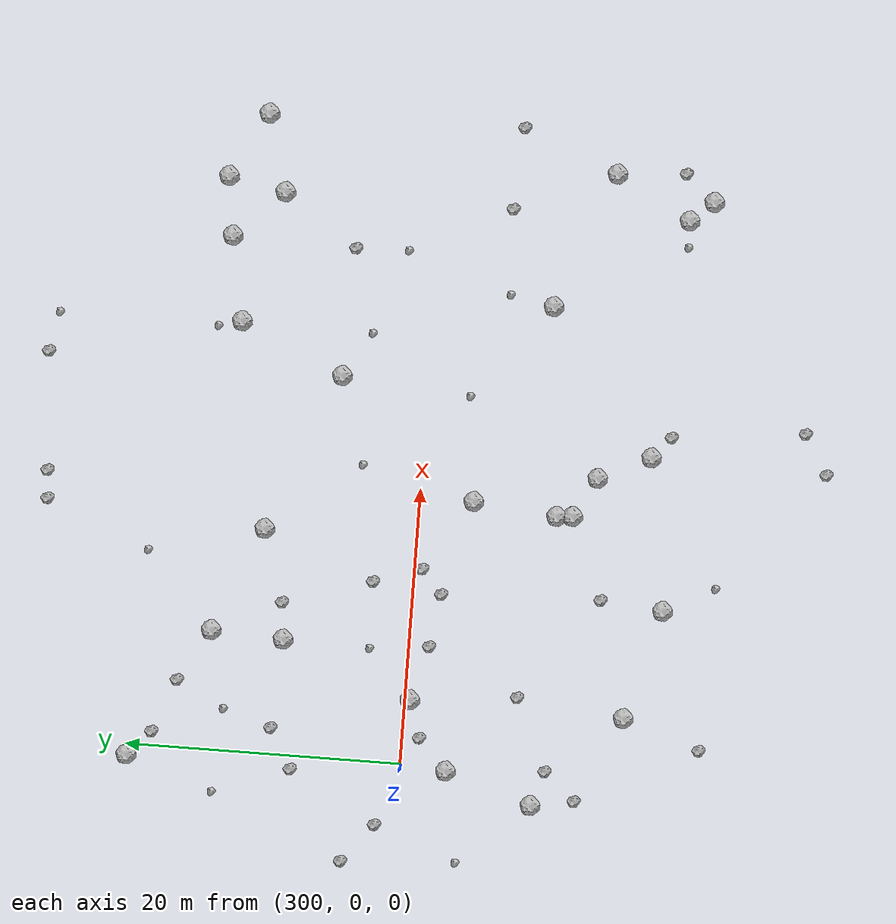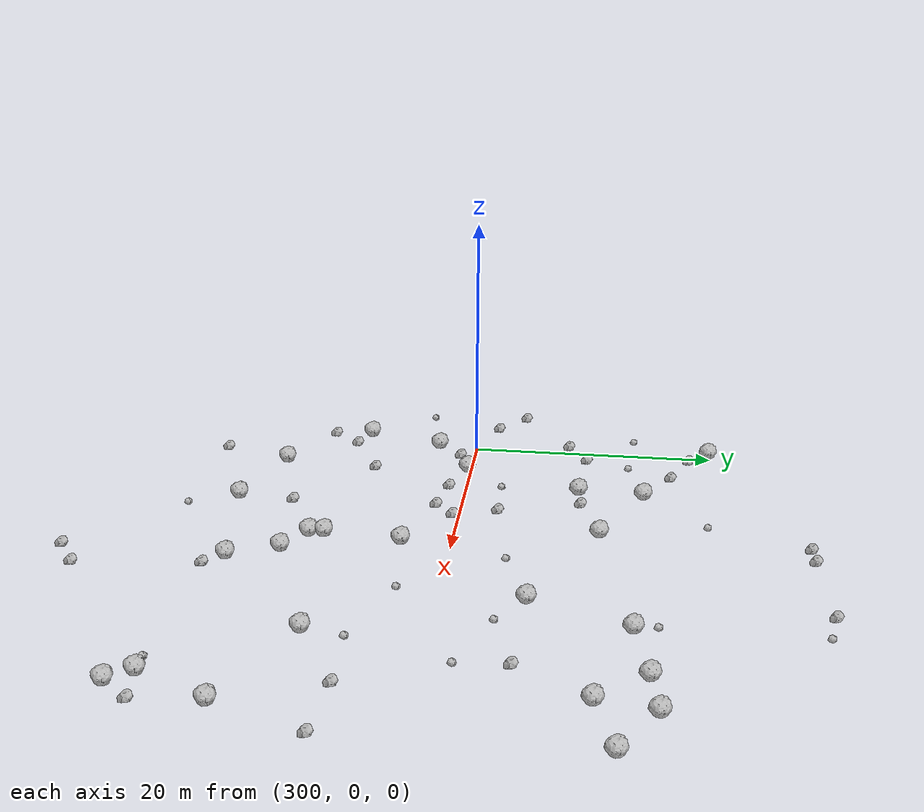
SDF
<sdf version="1.6">
 <world name="default">
  <include><uri>model://sun</uri></include>
  <model name="rock1_8_3">
   <include><uri>model://rock1</uri><pose>319.39903825789446 -3.8741807100624186 0.5 0 0 0</pose></include>
  </model>
  <model name="rock1_8_4">
   <include><uri>model://rock1</uri><pose>304.73874785337375 -0.3184072869260248 0.5 0 0 0</pose></include>
  </model>
  <model name="rock1_8_5">
   <include><uri>model://rock1</uri><pose>341.6758051017376 15.54872602066306 0.5 0 0 0</pose></include>
  </model>
  <model name="rock1_8_6">
   <include><uri>model://rock1</uri><pose>346.4114073162061 12.968579852684535 0.5 0 0 0</pose></include>
  </model>
  <model name="rock1_8_7">
   <include><uri>model://rock1</uri><pose>318.76347309489904 -9.935138192458421 0.5 0 0 0</pose></include>
  </model>
  <model name="rock1_8_8">
   <include><uri>model://rock1</uri><pose>299.7959055055412 -3.2705930146910305 0.5 0 0 0</pose></include>
  </model>
  <model name="rock1_8_9">
   <include><uri>model://rock1</uri><pose>308.7314607689295 14.389573344888284 0.5 0 0 0</pose></include>
  </model>
  <model name="rock1_8_10">
   <include><uri>model://rock1</uri><pose>340.80134738127845 11.390127027396119 0.5 0 0 0</pose></include>
  </model>
  <model name="rock1_8_11">
   <include><uri>model://rock1</uri><pose>331.2216493881798 13.823221610774077 0.5 0 0 0</pose></include>
  </model>
  <model name="rock1_8_12">
   <include><uri>model://rock1</uri><pose>321.72744533106754 -12.699483604586192 0.5 0 0 0</pose></include>
  </model>
  <model name="rock1_8_13">
   <include><uri>model://rock1</uri><pose>327.7957436558909 6.290745772112771 0.5 0 0 0</pose></include>
  </model>
  <model name="rock1_8_14">
   <include><uri>model://rock1</uri><pose>316.3286198671901 11.072659885856567 0.5 0 0 0</pose></include>
  </model>
  <model name="rock1_8_15">
   <include><uri>model://rock1</uri><pose>333.9250420460973 -8.627500936467648 0.5 0 0 0</pose></include>
  </model>
  <model name="rock1_8_16">
   <include><uri>model://rock1</uri><pose>337.37103628912865 14.95687827236555 0.5 0 0 0</pose></include>
  </model>
  <model name="rock1_8_17">
   <include><uri>model://rock1</uri><pose>323.5010728283591 -16.48045304789473 0.5 0 0 0</pose></include>
  </model>
  <model name="rock1_8_18">
   <include><uri>model://rock1</uri><pose>304.5265251078392 -15.817236235192025 0.5 0 0 0</pose></include>
  </model>
  <model name="rock1_8_19">
   <include><uri>model://rock1</uri><pose>312.4743506583595 -18.092065574632272 0.5 0 0 0</pose></include>
  </model>
  <model name="rock1_8_20">
   <include><uri>model://rock1</uri><pose>318.8422806668676 -11.097587719542055 0.5 0 0 0</pose></include>
  </model>
  <model name="rock1_8_21">
   <include><uri>model://rock1</uri><pose>343.8598241007367 -12.544052947456588 0.5 0 0 0</pose></include>
  </model>
  <model name="rock1_8_22">
   <include><uri>model://rock1</uri><pose>342.32889659416793 -19.686586112662603 0.5 0 0 0</pose></include>
  </model>
  <model name="rock1_8_23">
   <include><uri>model://rock1</uri><pose>299.3174918685036 19.86874604777597 0.5 0 0 0</pose></include>
  </model>
  <model name="rock1_8_24">
   <include><uri>model://rock1</uri><pose>297.7575532993873 -9.561197774863391 0.5 0 0 0</pose></include>
  </model>
  <model name="rock1_8_25">
   <include><uri>model://rock1</uri><pose>340.85842592976786 -18.004361239256845 0.5 0 0 0</pose></include>
  </model>
  <model name="rock1_8_26">
   <include><uri>model://rock1</uri><pose>308.43252927546183 9.157849467494806 0.5 0 0 0</pose></include>
  </model>
  <model name="rock2_8_0">
   <include><uri>model://rock2</uri><pose>313.06060100417864 2.9744683297647256 0.3 0 0 0</pose></include>
  </model>
  <model name="rock2_8_1">
   <include><uri>model://rock2</uri><pose>298.2556315424909 -12.681536319729783 0.3 0 0 0</pose></include>
  </model>
  <model name="rock2_8_2">
   <include><uri>model://rock2</uri><pose>326.02516621497585 -27.512886300241505 0.3 0 0 0</pose></include>
  </model>
  <model name="rock2_8_3">
   <include><uri>model://rock2</uri><pose>328.02915112691636 27.652770133483706 0.3 0 0 0</pose></include>
  </model>
  <model name="rock2_8_4">
   <include><uri>model://rock2</uri><pose>319.39852492714533 27.105471057190577 0.3 0 0 0</pose></include>
  </model>
  <model name="rock2_8_5">
   <include><uri>model://rock2</uri><pose>295.51809133119224 1.5995753775731885 0.3 0 0 0</pose></include>
  </model>
  <model name="rock2_8_6">
   <include><uri>model://rock2</uri><pose>304.9335630525692 16.627644199099883 0.3 0 0 0</pose></include>
  </model>
  <model name="rock2_8_7">
   <include><uri>model://rock2</uri><pose>337.0949927765419 5.992808050156192 0.3 0 0 0</pose></include>
  </model>
  <model name="rock2_8_8">
   <include><uri>model://rock2</uri><pose>346.72864291154076 -5.585880165947643 0.3 0 0 0</pose></include>
  </model>
  <model name="rock2_8_9">
   <include><uri>model://rock2</uri><pose>340.7717124340314 -5.185832543246278 0.3 0 0 0</pose></include>
  </model>
  <model name="rock2_8_10">
   <include><uri>model://rock2</uri><pose>301.07608248782793 18.186832299780107 0.3 0 0 0</pose></include>
  </model>
  <model name="rock2_8_11">
   <include><uri>model://rock2</uri><pose>311.08609171212856 9.436081161908504 0.3 0 0 0</pose></include>
  </model>
  <model name="rock2_8_12">
   <include><uri>model://rock2</uri><pose>302.5683723484153 -21.42971107460007 0.3 0 0 0</pose></include>
  </model>
  <model name="rock2_8_13">
   <include><uri>model://rock2</uri><pose>317.3621610093757 26.964819960705967 0.3 0 0 0</pose></include>
  </model>
  <model name="rock2_8_14">
   <include><uri>model://rock2</uri><pose>312.91636314277673 -13.556209899895698 0.3 0 0 0</pose></include>
  </model>
  <model name="rock2_8_15">
   <include><uri>model://rock2</uri><pose>301.96558907331416 9.610215309809725 0.3 0 0 0</pose></include>
  </model>
  <model name="rock2_8_16">
   <include><uri>model://rock2</uri><pose>344.25153355067226 -17.529425833929984 0.3 0 0 0</pose></include>
  </model>
  <model name="rock2_8_17">
   <include><uri>model://rock2</uri><pose>292.7162991523061 3.8554502234360086 0.3 0 0 0</pose></include>
  </model>
  <model name="rock2_8_18">
   <include><uri>model://rock2</uri><pose>305.44917304508795 -8.0528484985342 0.3 0 0 0</pose></include>
  </model>
  <model name="rock2_8_19">
   <include><uri>model://rock2</uri><pose>325.05884993110067 -17.84460803294609 0.3 0 0 0</pose></include>
  </model>
  <model name="rock2_8_20">
   <include><uri>model://rock2</uri><pose>323.15956229427525 -29.217680442005907 0.3 0 0 0</pose></include>
  </model>
  <model name="rock2_8_21">
   <include><uri>model://rock2</uri><pose>308.6566230510463 -1.4174197349264475 0.3 0 0 0</pose></include>
  </model>
  <model name="rock2_8_22">
   <include><uri>model://rock2</uri><pose>299.0833300140214 7.980979629556572 0.3 0 0 0</pose></include>
  </model>
  <model name="rock2_8_23">
   <include><uri>model://rock2</uri><pose>314.2346748378815 -0.5087838612451634 0.3 0 0 0</pose></include>
  </model>
  <model name="rock2_8_24">
   <include><uri>model://rock2</uri><pose>302.00432174129867 -1.1798387679488052 0.3 0 0 0</pose></include>
  </model>
  <model name="rock2_8_25">
   <include><uri>model://rock2</uri><pose>312.4869161452969 -2.013804913675802 0.3 0 0 0</pose></include>
  </model>
  <model name="rock2_8_26">
   <include><uri>model://rock2</uri><pose>300.2465425149298 -10.43095197527063 0.3 0 0 0</pose></include>
  </model>
  <model name="rock3_8_0">
   <include><uri>model://rock3</uri><pose>338.8813495727497 -18.088278356540265 0.2 0 0 0</pose></include>
  </model>
  <model name="rock3_8_1">
   <include><uri>model://rock3</uri><pose>330.89404156725647 27.048600359750104 0.2 0 0 0</pose></include>
  </model>
  <model name="rock3_8_2">
   <include><uri>model://rock3</uri><pose>314.3170972220571 -21.832944365141472 0.2 0 0 0</pose></include>
  </model>
  <model name="rock3_8_3">
   <include><uri>model://rock3</uri><pose>293.17341005004323 -4.458523273800079 0.2 0 0 0</pose></include>
  </model>
  <model name="rock3_8_4">
   <include><uri>model://rock3</uri><pose>308.19383122994077 2.8553097203595215 0.2 0 0 0</pose></include>
  </model>
  <model name="rock3_8_5">
   <include><uri>model://rock3</uri><pose>330.997288682846 4.299145572399844 0.2 0 0 0</pose></include>
  </model>
  <model name="rock3_8_6">
   <include><uri>model://rock3</uri><pose>314.1581133059589 19.374282874328316 0.2 0 0 0</pose></include>
  </model>
  <model name="rock3_8_7">
   <include><uri>model://rock3</uri><pose>337.18384837138154 2.1257954027010726 0.2 0 0 0</pose></include>
  </model>
  <model name="rock3_8_8">
   <include><uri>model://rock3</uri><pose>303.0598590237871 13.105036027123994 0.2 0 0 0</pose></include>
  </model>
  <model name="rock3_8_9">
   <include><uri>model://rock3</uri><pose>297.0187343259868 13.520928631732048 0.2 0 0 0</pose></include>
  </model>
  <model name="rock3_8_10">
   <include><uri>model://rock3</uri><pose>334.5174225876463 -5.485611844282229 0.2 0 0 0</pose></include>
  </model>
  <model name="rock3_8_11">
   <include><uri>model://rock3</uri><pose>321.42766497347355 4.319461999547649 0.2 0 0 0</pose></include>
  </model>
  <model name="rock3_8_12">
   <include><uri>model://rock3</uri><pose>330.7404045110212 15.511309387333604 0.2 0 0 0</pose></include>
  </model>
  <model name="rock3_8_13">
   <include><uri>model://rock3</uri><pose>326.95277662284155 -3.09616866416642 0.2 0 0 0</pose></include>
  </model>
 </world>
</sdf>
